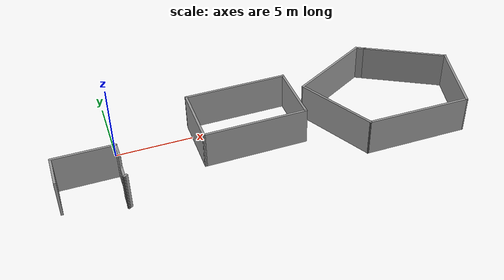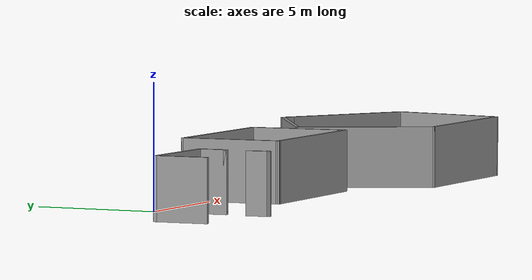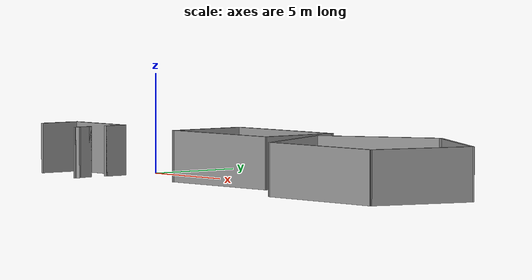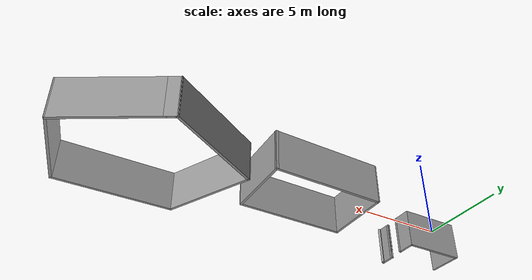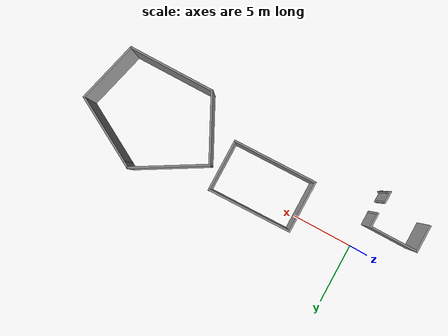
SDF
<?xml version='1.0'?>
<sdf version='1.7'>
  <model name='TestModel'>
    <pose>9.69605 -1.34552 0 0 -0 0</pose>
    <link name='Wall_0'>
      <collision name='Wall_0_Collision'>
        <geometry>
          <box>
            <size>2.25 0.15 2.5</size>
          </box>
        </geometry>
        <pose>0 0 1.25 0 -0 0</pose>
      </collision>
      <visual name='Wall_0_Visual'>
        <pose>0 0 1.25 0 -0 0</pose>
        <geometry>
          <box>
            <size>2.25 0.15 2.5</size>
          </box>
        </geometry>
        <material>
          <script>
            <uri>file://media/materials/scripts/gazebo.material</uri>
            <name>Gazebo/Grey</name>
          </script>
          <ambient>1 1 1 1</ambient>
        </material>
        <meta>
          <layer>0</layer>
        </meta>
      </visual>
      <pose>-13.6161 -1.68448 0 0 -0 1.5708</pose>
    </link>
    <link name='Wall_1'>
      <collision name='Wall_1_Collision'>
        <geometry>
          <box>
            <size>4 0.15 2.5</size>
          </box>
        </geometry>
        <pose>0 0 1.25 0 -0 0</pose>
      </collision>
      <visual name='Wall_1_Visual'>
        <pose>0 0 1.25 0 -0 0</pose>
        <geometry>
          <box>
            <size>4 0.15 2.5</size>
          </box>
        </geometry>
        <material>
          <script>
            <uri>file://media/materials/scripts/gazebo.material</uri>
            <name>Gazebo/Grey</name>
          </script>
          <ambient>1 1 1 1</ambient>
        </material>
        <meta>
          <layer>0</layer>
        </meta>
      </visual>
      <pose>-11.6911 -0.634476 0 0 -0 0</pose>
    </link>
    <link name='Wall_10'>
      <collision name='Wall_10_Collision'>
        <geometry>
          <box>
            <size>6.86355 0.15 2.5</size>
          </box>
        </geometry>
        <pose>0 0 1.25 0 -0 0</pose>
      </collision>
      <visual name='Wall_10_Visual'>
        <pose>0 0 1.25 0 -0 0</pose>
        <geometry>
          <box>
            <size>6.86355 0.15 2.5</size>
          </box>
        </geometry>
        <material>
          <script>
            <uri>file://media/materials/scripts/gazebo.material</uri>
            <name>Gazebo/Grey</name>
          </script>
          <ambient>1 1 1 1</ambient>
        </material>
        <meta>
          <layer>0</layer>
        </meta>
      </visual>
      <pose>-1.24817 2.55169 0 0 -0 0.012847</pose>
    </link>
    <link name='Wall_11'>
      <collision name='Wall_11_Collision'>
        <geometry>
          <box>
            <size>4.25 0.15 2.5</size>
          </box>
        </geometry>
        <pose>0 0 1.25 0 -0 0</pose>
      </collision>
      <visual name='Wall_11_Visual'>
        <pose>0 0 1.25 0 -0 0</pose>
        <geometry>
          <box>
            <size>4.25 0.15 2.5</size>
          </box>
        </geometry>
        <material>
          <script>
            <uri>file://media/materials/scripts/gazebo.material</uri>
            <name>Gazebo/Grey</name>
          </script>
          <ambient>1 1 1 1</ambient>
        </material>
        <meta>
          <layer>0</layer>
        </meta>
      </visual>
      <pose>2.10833 0.562061 0 0 -0 -1.5708</pose>
    </link>
    <link name='Wall_12'>
      <collision name='Wall_12_Collision'>
        <geometry>
          <box>
            <size>6.86355 0.15 2.5</size>
          </box>
        </geometry>
        <pose>0 0 1.25 0 -0 0</pose>
      </collision>
      <visual name='Wall_12_Visual'>
        <pose>0 0 1.25 0 -0 0</pose>
        <geometry>
          <box>
            <size>6.86355 0.15 2.5</size>
          </box>
        </geometry>
        <material>
          <script>
            <uri>file://media/materials/scripts/gazebo.material</uri>
            <name>Gazebo/Grey</name>
          </script>
          <ambient>1 1 1 1</ambient>
        </material>
        <meta>
          <layer>0</layer>
        </meta>
      </visual>
      <pose>-1.24817 -1.54831 0 0 -0 -3.12874</pose>
    </link>
    <link name='Wall_14'>
      <collision name='Wall_14_Collision'>
        <geometry>
          <box>
            <size>6.25 0.15 2.5</size>
          </box>
        </geometry>
        <pose>0 0 1.25 0 -0 0</pose>
      </collision>
      <visual name='Wall_14_Visual'>
        <pose>0 0 1.25 0 -0 0</pose>
        <geometry>
          <box>
            <size>6.25 0.15 2.5</size>
          </box>
        </geometry>
        <material>
          <script>
            <uri>file://media/materials/scripts/gazebo.material</uri>
            <name>Gazebo/Grey</name>
          </script>
          <ambient>1 1 1 1</ambient>
        </material>
        <meta>
          <layer>0</layer>
        </meta>
      </visual>
      <pose>5.57787 2.48718 0 0 -0 0.523599</pose>
    </link>
    <link name='Wall_15'>
      <collision name='Wall_15_Collision'>
        <geometry>
          <box>
            <size>0.75 0.15 2.5</size>
          </box>
        </geometry>
        <pose>0 0 1.25 0 -0 0</pose>
      </collision>
      <visual name='Wall_15_Visual'>
        <pose>0 0 1.25 0 -0 0</pose>
        <geometry>
          <box>
            <size>0.75 0.15 2.5</size>
          </box>
        </geometry>
        <material>
          <script>
            <uri>file://media/materials/scripts/gazebo.material</uri>
            <name>Gazebo/Grey</name>
          </script>
          <ambient>1 1 1 1</ambient>
        </material>
        <meta>
          <layer>0</layer>
        </meta>
      </visual>
      <pose>8.47905 3.86218 0 0 -0 -0.523599</pose>
    </link>
    <link name='Wall_16'>
      <collision name='Wall_16_Collision'>
        <geometry>
          <box>
            <size>5.75 0.15 2.5</size>
          </box>
        </geometry>
        <pose>0 0 1.25 0 -0 0</pose>
      </collision>
      <visual name='Wall_16_Visual'>
        <pose>0 0 1.25 0 -0 0</pose>
        <geometry>
          <box>
            <size>5.75 0.15 2.5</size>
          </box>
        </geometry>
        <material>
          <script>
            <uri>file://media/materials/scripts/gazebo.material</uri>
            <name>Gazebo/Grey</name>
          </script>
          <ambient>1 1 1 1</ambient>
        </material>
        <meta>
          <layer>0</layer>
        </meta>
      </visual>
      <pose>11.1637 2.31218 0 0 -0 -0.523599</pose>
    </link>
    <link name='Wall_17'>
      <collision name='Wall_17_Collision'>
        <geometry>
          <box>
            <size>5.25 0.15 2.5</size>
          </box>
        </geometry>
        <pose>0 0 1.25 0 -0 0</pose>
      </collision>
      <visual name='Wall_17_Visual'>
        <pose>0 0 1.25 0 -0 0</pose>
        <geometry>
          <box>
            <size>5.25 0.15 2.5</size>
          </box>
        </geometry>
        <material>
          <script>
            <uri>file://media/materials/scripts/gazebo.material</uri>
            <name>Gazebo/Grey</name>
          </script>
          <ambient>1 1 1 1</ambient>
        </material>
        <meta>
          <layer>0</layer>
        </meta>
      </visual>
      <pose>12.9286 -1.55093 0 0 -0 -1.8326</pose>
    </link>
    <link name='Wall_18'>
      <collision name='Wall_18_Collision'>
        <geometry>
          <box>
            <size>7 0.15 2.5</size>
          </box>
        </geometry>
        <pose>0 0 1.25 0 -0 0</pose>
      </collision>
      <visual name='Wall_18_Visual'>
        <pose>0 0 1.25 0 -0 0</pose>
        <geometry>
          <box>
            <size>7 0.15 2.5</size>
          </box>
        </geometry>
        <material>
          <script>
            <uri>file://media/materials/scripts/gazebo.material</uri>
            <name>Gazebo/Grey</name>
          </script>
          <ambient>1 1 1 1</ambient>
        </material>
        <meta>
          <layer>0</layer>
        </meta>
      </visual>
      <pose>8.84362 -4.01404 0 0 -0 3.14159</pose>
    </link>
    <link name='Wall_19'>
      <collision name='Wall_19_Collision'>
        <geometry>
          <box>
            <size>5.71091 0.15 2.5</size>
          </box>
        </geometry>
        <pose>0 0 1.25 0 -0 0</pose>
      </collision>
      <visual name='Wall_19_Visual'>
        <pose>0 0 1.25 0 -0 0</pose>
        <geometry>
          <box>
            <size>5.71091 0.15 2.5</size>
          </box>
        </geometry>
        <material>
          <script>
            <uri>file://media/materials/scripts/gazebo.material</uri>
            <name>Gazebo/Grey</name>
          </script>
          <ambient>1 1 1 1</ambient>
        </material>
        <meta>
          <layer>0</layer>
        </meta>
      </visual>
      <pose>4.17755 -1.52593 0 0 -0 2.03348</pose>
    </link>
    <link name='Wall_2'>
      <collision name='Wall_2_Collision'>
        <geometry>
          <box>
            <size>1.25 0.15 2.5</size>
          </box>
        </geometry>
        <pose>0 0 1.25 0 -0 0</pose>
      </collision>
      <visual name='Wall_2_Visual'>
        <pose>0 0 1.25 0 -0 0</pose>
        <geometry>
          <box>
            <size>1.25 0.15 2.5</size>
          </box>
        </geometry>
        <material>
          <script>
            <uri>file://media/materials/scripts/gazebo.material</uri>
            <name>Gazebo/Grey</name>
          </script>
          <ambient>1 1 1 1</ambient>
        </material>
        <meta>
          <layer>0</layer>
        </meta>
      </visual>
      <pose>-9.76605 -1.18448 0 0 -0 -1.5708</pose>
    </link>
    <link name='Wall_3'>
      <collision name='Wall_3_Collision'>
        <geometry>
          <box>
            <size>0.15 0.15 2.5</size>
          </box>
        </geometry>
        <pose>0 0 1.25 0 -0 0</pose>
      </collision>
      <visual name='Wall_3_Visual'>
        <pose>0 0 1.25 0 -0 0</pose>
        <geometry>
          <box>
            <size>0.15 0.15 2.5</size>
          </box>
        </geometry>
        <material>
          <script>
            <uri>file://media/materials/scripts/gazebo.material</uri>
            <name>Gazebo/Grey</name>
          </script>
          <ambient>1 1 1 1</ambient>
        </material>
        <meta>
          <layer>0</layer>
        </meta>
      </visual>
      <pose>-9.76605 -1.73448 0 0 -0 0</pose>
    </link>
    <link name='Wall_5'>
      <collision name='Wall_5_Collision'>
        <geometry>
          <box>
            <size>0.3 0.15 2.5</size>
          </box>
        </geometry>
        <pose>0 0 1.25 0 -0 0</pose>
      </collision>
      <visual name='Wall_5_Visual'>
        <pose>0 0 1.25 0 -0 0</pose>
        <geometry>
          <box>
            <size>0.3 0.15 2.5</size>
          </box>
        </geometry>
        <material>
          <script>
            <uri>file://media/materials/scripts/gazebo.material</uri>
            <name>Gazebo/Grey</name>
          </script>
          <ambient>1 1 1 1</ambient>
        </material>
        <meta>
          <layer>0</layer>
        </meta>
      </visual>
      <pose>-9.781 -3.54198 0 0 -0 -2.61799</pose>
    </link>
    <link name='Wall_6'>
      <collision name='Wall_6_Collision'>
        <geometry>
          <box>
            <size>1 0.15 2.5</size>
          </box>
        </geometry>
        <pose>0 0 1.25 0 -0 0</pose>
      </collision>
      <visual name='Wall_6_Visual'>
        <pose>0 0 1.25 0 -0 0</pose>
        <geometry>
          <box>
            <size>1 0.15 2.5</size>
          </box>
        </geometry>
        <material>
          <script>
            <uri>file://media/materials/scripts/gazebo.material</uri>
            <name>Gazebo/Grey</name>
          </script>
          <ambient>1 1 1 1</ambient>
        </material>
        <meta>
          <layer>0</layer>
        </meta>
      </visual>
      <pose>-9.84596 -3.15448 0 0 -0 1.5708</pose>
    </link>
    <link name='Wall_7'>
      <collision name='Wall_7_Collision'>
        <geometry>
          <box>
            <size>0.15 0.15 2.5</size>
          </box>
        </geometry>
        <pose>0 0 1.25 0 -0 0</pose>
      </collision>
      <visual name='Wall_7_Visual'>
        <pose>0 0 1.25 0 -0 0</pose>
        <geometry>
          <box>
            <size>0.15 0.15 2.5</size>
          </box>
        </geometry>
        <material>
          <script>
            <uri>file://media/materials/scripts/gazebo.material</uri>
            <name>Gazebo/Grey</name>
          </script>
          <ambient>1 1 1 1</ambient>
        </material>
        <meta>
          <layer>0</layer>
        </meta>
      </visual>
      <pose>-9.84596 -2.72948 0 0 -0 0</pose>
    </link>
    <link name='Wall_9'>
      <collision name='Wall_9_Collision'>
        <geometry>
          <box>
            <size>4.25 0.15 2.5</size>
          </box>
        </geometry>
        <pose>0 0 1.25 0 -0 0</pose>
      </collision>
      <visual name='Wall_9_Visual'>
        <pose>0 0 1.25 0 -0 0</pose>
        <geometry>
          <box>
            <size>4.25 0.15 2.5</size>
          </box>
        </geometry>
        <material>
          <script>
            <uri>file://media/materials/scripts/gazebo.material</uri>
            <name>Gazebo/Grey</name>
          </script>
          <ambient>1 1 1 1</ambient>
        </material>
        <meta>
          <layer>0</layer>
        </meta>
      </visual>
      <pose>-4.60467 0.458561 0 0 -0 1.5708</pose>
    </link>
    <static>1</static>
  </model>
</sdf>
